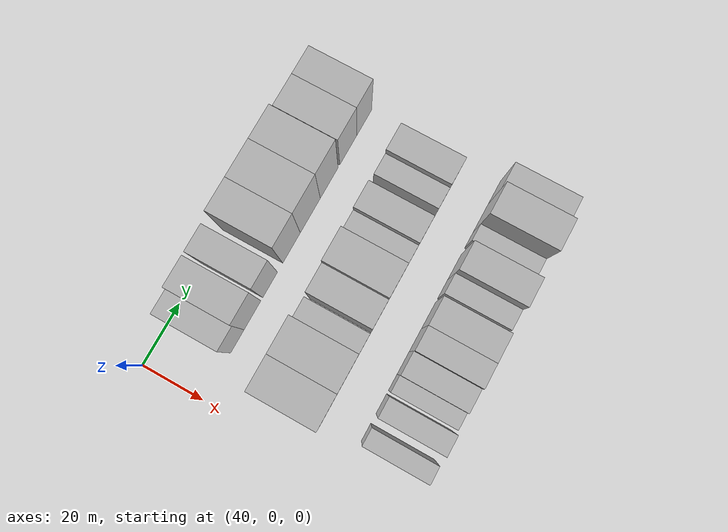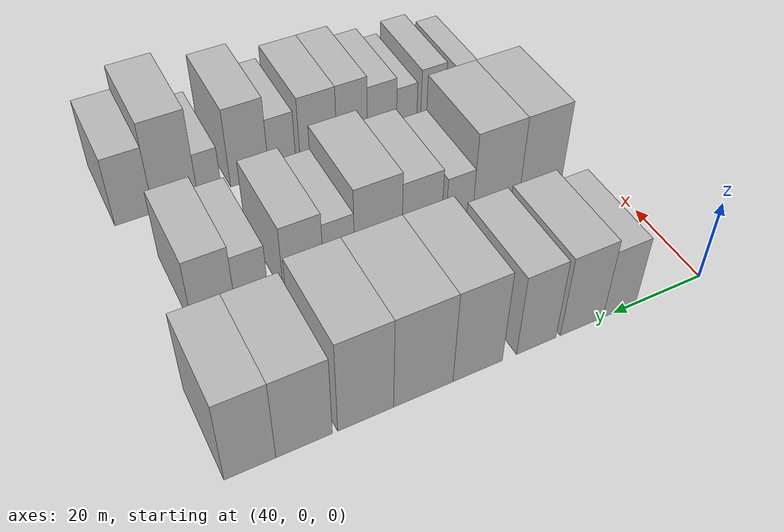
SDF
<sdf version="1.6">
 <world name="default">
  <model name="building_37">
   <static>1</static>
   <pose>50.0000 18.7815 0 0.000000 0.000000 0.000000</pose>
   <link name="link">
    <pose>0 0 9.00 0 0 0</pose>
    <collision name="collision"><geometry><box><size>20.0000 7.4841 18.0000</size></box></geometry></collision>
    <visual name="visual">
     <cast_shadows>0</cast_shadows>
     <geometry><box><size>20.0000 7.4841 18.0000</size></box></geometry>
     <material>
      <script>
       <uri>model://HANNAS_wall/materials/scripts</uri>
       <uri>model://HANNAS_wall/materials/textures</uri>
       <name>vrc/HANNAS_wall</name>
      </script>
     </material>
    </visual>
   </link>
  </model>
  <model name="building_38">
   <static>1</static>
   <pose>50.0000 27.2615 0 0.000000 0.000000 0.000000</pose>
   <link name="link">
    <pose>0 0 10.50 0 0 0</pose>
    <collision name="collision"><geometry><box><size>20.0000 9.4758 21.0000</size></box></geometry></collision>
    <visual name="visual">
     <cast_shadows>0</cast_shadows>
     <geometry><box><size>20.0000 9.4758 21.0000</size></box></geometry>
     <material>
      <script>
       <uri>model://HANNAS_wall/materials/scripts</uri>
       <uri>model://HANNAS_wall/materials/textures</uri>
       <name>vrc/HANNAS_wall</name>
      </script>
     </material>
    </visual>
   </link>
  </model>
  <model name="building_39">
   <static>1</static>
   <pose>50.0000 37.2371 0 0.000000 0.000000 0.000000</pose>
   <link name="link">
    <pose>0 0 10.50 0 0 0</pose>
    <collision name="collision"><geometry><box><size>20.0000 8.4755 21.0000</size></box></geometry></collision>
    <visual name="visual">
     <cast_shadows>0</cast_shadows>
     <geometry><box><size>20.0000 8.4755 21.0000</size></box></geometry>
     <material>
      <script>
       <uri>model://HANNAS_wall/materials/scripts</uri>
       <uri>model://HANNAS_wall/materials/textures</uri>
       <name>vrc/HANNAS_wall</name>
      </script>
     </material>
    </visual>
   </link>
  </model>
  <model name="building_40">
   <static>1</static>
   <pose>50.0000 49.5803 0 0.000000 0.000000 0.000000</pose>
   <link name="link">
    <pose>0 0 12.00 0 0 0</pose>
    <collision name="collision"><geometry><box><size>20.0000 10.2108 24.0000</size></box></geometry></collision>
    <visual name="visual">
     <cast_shadows>0</cast_shadows>
     <geometry><box><size>20.0000 10.2108 24.0000</size></box></geometry>
     <material>
      <script>
       <uri>model://HANNAS_wall/materials/scripts</uri>
       <uri>model://HANNAS_wall/materials/textures</uri>
       <name>vrc/HANNAS_wall</name>
      </script>
     </material>
    </visual>
   </link>
  </model>
  <model name="building_41">
   <static>1</static>
   <pose>50.0000 60.5973 0 0.000000 0.000000 0.000000</pose>
   <link name="link">
    <pose>0 0 12.00 0 0 0</pose>
    <collision name="collision"><geometry><box><size>20.0000 11.8232 24.0000</size></box></geometry></collision>
    <visual name="visual">
     <cast_shadows>0</cast_shadows>
     <geometry><box><size>20.0000 11.8232 24.0000</size></box></geometry>
     <material>
      <script>
       <uri>model://HANNAS_wall/materials/scripts</uri>
       <uri>model://HANNAS_wall/materials/textures</uri>
       <name>vrc/HANNAS_wall</name>
      </script>
     </material>
    </visual>
   </link>
  </model>
  <model name="building_42">
   <static>1</static>
   <pose>50.0000 71.8486 0 0.000000 0.000000 0.000000</pose>
   <link name="link">
    <pose>0 0 12.00 0 0 0</pose>
    <collision name="collision"><geometry><box><size>20.0000 10.6795 24.0000</size></box></geometry></collision>
    <visual name="visual">
     <cast_shadows>0</cast_shadows>
     <geometry><box><size>20.0000 10.6795 24.0000</size></box></geometry>
     <material>
      <script>
       <uri>model://HANNAS_wall/materials/scripts</uri>
       <uri>model://HANNAS_wall/materials/textures</uri>
       <name>vrc/HANNAS_wall</name>
      </script>
     </material>
    </visual>
   </link>
  </model>
  <model name="building_43">
   <static>1</static>
   <pose>50.0000 83.3677 0 0.000000 0.000000 0.000000</pose>
   <link name="link">
    <pose>0 0 10.50 0 0 0</pose>
    <collision name="collision"><geometry><box><size>20.0000 10.3586 21.0000</size></box></geometry></collision>
    <visual name="visual">
     <cast_shadows>0</cast_shadows>
     <geometry><box><size>20.0000 10.3586 21.0000</size></box></geometry>
     <material>
      <script>
       <uri>model://HANNAS_wall/materials/scripts</uri>
       <uri>model://HANNAS_wall/materials/textures</uri>
       <name>vrc/HANNAS_wall</name>
      </script>
     </material>
    </visual>
   </link>
  </model>
  <model name="building_44">
   <static>1</static>
   <pose>50.0000 93.1518 0 0.000000 0.000000 0.000000</pose>
   <link name="link">
    <pose>0 0 10.50 0 0 0</pose>
    <collision name="collision"><geometry><box><size>20.0000 9.2096 21.0000</size></box></geometry></collision>
    <visual name="visual">
     <cast_shadows>0</cast_shadows>
     <geometry><box><size>20.0000 9.2096 21.0000</size></box></geometry>
     <material>
      <script>
       <uri>model://HANNAS_wall/materials/scripts</uri>
       <uri>model://HANNAS_wall/materials/textures</uri>
       <name>vrc/HANNAS_wall</name>
      </script>
     </material>
    </visual>
   </link>
  </model>
  <model name="building_112">
   <static>1</static>
   <pose>82.0000 15.8721 0 0.000000 0.000000 0.000000</pose>
   <link name="link">
    <pose>0 0 12.00 0 0 0</pose>
    <collision name="collision"><geometry><box><size>20.0000 10.3417 24.0000</size></box></geometry></collision>
    <visual name="visual">
     <cast_shadows>0</cast_shadows>
     <geometry><box><size>20.0000 10.3417 24.0000</size></box></geometry>
     <material>
      <script>
       <uri>model://HANNAS_wall/materials/scripts</uri>
       <uri>model://HANNAS_wall/materials/textures</uri>
       <name>vrc/HANNAS_wall</name>
      </script>
     </material>
    </visual>
   </link>
  </model>
  <model name="building_113">
   <static>1</static>
   <pose>82.0000 26.5463 0 0.000000 0.000000 0.000000</pose>
   <link name="link">
    <pose>0 0 12.00 0 0 0</pose>
    <collision name="collision"><geometry><box><size>20.0000 11.0065 24.0000</size></box></geometry></collision>
    <visual name="visual">
     <cast_shadows>0</cast_shadows>
     <geometry><box><size>20.0000 11.0065 24.0000</size></box></geometry>
     <material>
      <script>
       <uri>model://HANNAS_wall/materials/scripts</uri>
       <uri>model://HANNAS_wall/materials/textures</uri>
       <name>vrc/HANNAS_wall</name>
      </script>
     </material>
    </visual>
   </link>
  </model>
  <model name="building_114">
   <static>1</static>
   <pose>82.0000 35.1488 0 0.000000 0.000000 0.000000</pose>
   <link name="link">
    <pose>0 0 7.50 0 0 0</pose>
    <collision name="collision"><geometry><box><size>20.0000 6.1986 15.0000</size></box></geometry></collision>
    <visual name="visual">
     <cast_shadows>0</cast_shadows>
     <geometry><box><size>20.0000 6.1986 15.0000</size></box></geometry>
     <material>
      <script>
       <uri>model://HANNAS_wall/materials/scripts</uri>
       <uri>model://HANNAS_wall/materials/textures</uri>
       <name>vrc/HANNAS_wall</name>
      </script>
     </material>
    </visual>
   </link>
  </model>
  <model name="building_115">
   <static>1</static>
   <pose>82.0000 43.6789 0 0.000000 0.000000 0.000000</pose>
   <link name="link">
    <pose>0 0 9.00 0 0 0</pose>
    <collision name="collision"><geometry><box><size>20.0000 8.8616 18.0000</size></box></geometry></collision>
    <visual name="visual">
     <cast_shadows>0</cast_shadows>
     <geometry><box><size>20.0000 8.8616 18.0000</size></box></geometry>
     <material>
      <script>
       <uri>model://HANNAS_wall/materials/scripts</uri>
       <uri>model://HANNAS_wall/materials/textures</uri>
       <name>vrc/HANNAS_wall</name>
      </script>
     </material>
    </visual>
   </link>
  </model>
  <model name="building_116">
   <static>1</static>
   <pose>82.0000 53.2702 0 0.000000 0.000000 0.000000</pose>
   <link name="link">
    <pose>0 0 10.50 0 0 0</pose>
    <collision name="collision"><geometry><box><size>20.0000 10.3209 21.0000</size></box></geometry></collision>
    <visual name="visual">
     <cast_shadows>0</cast_shadows>
     <geometry><box><size>20.0000 10.3209 21.0000</size></box></geometry>
     <material>
      <script>
       <uri>model://HANNAS_wall/materials/scripts</uri>
       <uri>model://HANNAS_wall/materials/textures</uri>
       <name>vrc/HANNAS_wall</name>
      </script>
     </material>
    </visual>
   </link>
  </model>
  <model name="building_117">
   <static>1</static>
   <pose>82.0000 61.7337 0 0.000000 0.000000 0.000000</pose>
   <link name="link">
    <pose>0 0 7.50 0 0 0</pose>
    <collision name="collision"><geometry><box><size>20.0000 6.6061 15.0000</size></box></geometry></collision>
    <visual name="visual">
     <cast_shadows>0</cast_shadows>
     <geometry><box><size>20.0000 6.6061 15.0000</size></box></geometry>
     <material>
      <script>
       <uri>model://HANNAS_wall/materials/scripts</uri>
       <uri>model://HANNAS_wall/materials/textures</uri>
       <name>vrc/HANNAS_wall</name>
      </script>
     </material>
    </visual>
   </link>
  </model>
  <model name="building_118">
   <static>1</static>
   <pose>82.0000 69.2477 0 0.000000 0.000000 0.000000</pose>
   <link name="link">
    <pose>0 0 9.00 0 0 0</pose>
    <collision name="collision"><geometry><box><size>20.0000 8.4220 18.0000</size></box></geometry></collision>
    <visual name="visual">
     <cast_shadows>0</cast_shadows>
     <geometry><box><size>20.0000 8.4220 18.0000</size></box></geometry>
     <material>
      <script>
       <uri>model://HANNAS_wall/materials/scripts</uri>
       <uri>model://HANNAS_wall/materials/textures</uri>
       <name>vrc/HANNAS_wall</name>
      </script>
     </material>
    </visual>
   </link>
  </model>
  <model name="building_119">
   <static>1</static>
   <pose>82.0000 79.7962 0 0.000000 0.000000 0.000000</pose>
   <link name="link">
    <pose>0 0 7.50 0 0 0</pose>
    <collision name="collision"><geometry><box><size>20.0000 6.6749 15.0000</size></box></geometry></collision>
    <visual name="visual">
     <cast_shadows>0</cast_shadows>
     <geometry><box><size>20.0000 6.6749 15.0000</size></box></geometry>
     <material>
      <script>
       <uri>model://HANNAS_wall/materials/scripts</uri>
       <uri>model://HANNAS_wall/materials/textures</uri>
       <name>vrc/HANNAS_wall</name>
      </script>
     </material>
    </visual>
   </link>
  </model>
  <model name="building_120">
   <static>1</static>
   <pose>82.0000 87.4304 0 0.000000 0.000000 0.000000</pose>
   <link name="link">
    <pose>0 0 9.00 0 0 0</pose>
    <collision name="collision"><geometry><box><size>20.0000 8.5935 18.0000</size></box></geometry></collision>
    <visual name="visual">
     <cast_shadows>0</cast_shadows>
     <geometry><box><size>20.0000 8.5935 18.0000</size></box></geometry>
     <material>
      <script>
       <uri>model://HANNAS_wall/materials/scripts</uri>
       <uri>model://HANNAS_wall/materials/textures</uri>
       <name>vrc/HANNAS_wall</name>
      </script>
     </material>
    </visual>
   </link>
  </model>
  <model name="building_191">
   <static>1</static>
   <pose>114.0000 14.6519 0 0.000000 0.000000 0.000000</pose>
   <link name="link">
    <pose>0 0 6.00 0 0 0</pose>
    <collision name="collision"><geometry><box><size>20.0000 5.3671 12.0000</size></box></geometry></collision>
    <visual name="visual">
     <cast_shadows>0</cast_shadows>
     <geometry><box><size>20.0000 5.3671 12.0000</size></box></geometry>
     <material>
      <script>
       <uri>model://HANNAS_wall/materials/scripts</uri>
       <uri>model://HANNAS_wall/materials/textures</uri>
       <name>vrc/HANNAS_wall</name>
      </script>
     </material>
    </visual>
   </link>
  </model>
  <model name="building_192">
   <static>1</static>
   <pose>114.0000 23.4452 0 0.000000 0.000000 0.000000</pose>
   <link name="link">
    <pose>0 0 7.50 0 0 0</pose>
    <collision name="collision"><geometry><box><size>20.0000 6.2194 15.0000</size></box></geometry></collision>
    <visual name="visual">
     <cast_shadows>0</cast_shadows>
     <geometry><box><size>20.0000 6.2194 15.0000</size></box></geometry>
     <material>
      <script>
       <uri>model://HANNAS_wall/materials/scripts</uri>
       <uri>model://HANNAS_wall/materials/textures</uri>
       <name>vrc/HANNAS_wall</name>
      </script>
     </material>
    </visual>
   </link>
  </model>
  <model name="building_193">
   <static>1</static>
   <pose>114.0000 30.0921 0 0.000000 0.000000 0.000000</pose>
   <link name="link">
    <pose>0 0 6.00 0 0 0</pose>
    <collision name="collision"><geometry><box><size>20.0000 5.0745 12.0000</size></box></geometry></collision>
    <visual name="visual">
     <cast_shadows>0</cast_shadows>
     <geometry><box><size>20.0000 5.0745 12.0000</size></box></geometry>
     <material>
      <script>
       <uri>model://HANNAS_wall/materials/scripts</uri>
       <uri>model://HANNAS_wall/materials/textures</uri>
       <name>vrc/HANNAS_wall</name>
      </script>
     </material>
    </visual>
   </link>
  </model>
  <model name="building_194">
   <static>1</static>
   <pose>114.0000 36.2184 0 0.000000 0.000000 0.000000</pose>
   <link name="link">
    <pose>0 0 7.50 0 0 0</pose>
    <collision name="collision"><geometry><box><size>20.0000 7.1781 15.0000</size></box></geometry></collision>
    <visual name="visual">
     <cast_shadows>0</cast_shadows>
     <geometry><box><size>20.0000 7.1781 15.0000</size></box></geometry>
     <material>
      <script>
       <uri>model://HANNAS_wall/materials/scripts</uri>
       <uri>model://HANNAS_wall/materials/textures</uri>
       <name>vrc/HANNAS_wall</name>
      </script>
     </material>
    </visual>
   </link>
  </model>
  <model name="building_195">
   <static>1</static>
   <pose>114.0000 43.5138 0 0.000000 0.000000 0.000000</pose>
   <link name="link">
    <pose>0 0 9.00 0 0 0</pose>
    <collision name="collision"><geometry><box><size>20.0000 7.4126 18.0000</size></box></geometry></collision>
    <visual name="visual">
     <cast_shadows>0</cast_shadows>
     <geometry><box><size>20.0000 7.4126 18.0000</size></box></geometry>
     <material>
      <script>
       <uri>model://HANNAS_wall/materials/scripts</uri>
       <uri>model://HANNAS_wall/materials/textures</uri>
       <name>vrc/HANNAS_wall</name>
      </script>
     </material>
    </visual>
   </link>
  </model>
  <model name="building_196">
   <static>1</static>
   <pose>114.0000 51.5668 0 0.000000 0.000000 0.000000</pose>
   <link name="link">
    <pose>0 0 9.00 0 0 0</pose>
    <collision name="collision"><geometry><box><size>20.0000 8.6933 18.0000</size></box></geometry></collision>
    <visual name="visual">
     <cast_shadows>0</cast_shadows>
     <geometry><box><size>20.0000 8.6933 18.0000</size></box></geometry>
     <material>
      <script>
       <uri>model://HANNAS_wall/materials/scripts</uri>
       <uri>model://HANNAS_wall/materials/textures</uri>
       <name>vrc/HANNAS_wall</name>
      </script>
     </material>
    </visual>
   </link>
  </model>
  <model name="building_197">
   <static>1</static>
   <pose>114.0000 60.0441 0 0.000000 0.000000 0.000000</pose>
   <link name="link">
    <pose>0 0 7.50 0 0 0</pose>
    <collision name="collision"><geometry><box><size>20.0000 6.2613 15.0000</size></box></geometry></collision>
    <visual name="visual">
     <cast_shadows>0</cast_shadows>
     <geometry><box><size>20.0000 6.2613 15.0000</size></box></geometry>
     <material>
      <script>
       <uri>model://HANNAS_wall/materials/scripts</uri>
       <uri>model://HANNAS_wall/materials/textures</uri>
       <name>vrc/HANNAS_wall</name>
      </script>
     </material>
    </visual>
   </link>
  </model>
  <model name="building_198">
   <static>1</static>
   <pose>114.0000 67.5379 0 0.000000 0.000000 0.000000</pose>
   <link name="link">
    <pose>0 0 10.50 0 0 0</pose>
    <collision name="collision"><geometry><box><size>20.0000 8.7264 21.0000</size></box></geometry></collision>
    <visual name="visual">
     <cast_shadows>0</cast_shadows>
     <geometry><box><size>20.0000 8.7264 21.0000</size></box></geometry>
     <material>
      <script>
       <uri>model://HANNAS_wall/materials/scripts</uri>
       <uri>model://HANNAS_wall/materials/textures</uri>
       <name>vrc/HANNAS_wall</name>
      </script>
     </material>
    </visual>
   </link>
  </model>
  <model name="building_199">
   <static>1</static>
   <pose>114.0000 76.5155 0 0.000000 0.000000 0.000000</pose>
   <link name="link">
    <pose>0 0 6.00 0 0 0</pose>
    <collision name="collision"><geometry><box><size>20.0000 5.2288 12.0000</size></box></geometry></collision>
    <visual name="visual">
     <cast_shadows>0</cast_shadows>
     <geometry><box><size>20.0000 5.2288 12.0000</size></box></geometry>
     <material>
      <script>
       <uri>model://HANNAS_wall/materials/scripts</uri>
       <uri>model://HANNAS_wall/materials/textures</uri>
       <name>vrc/HANNAS_wall</name>
      </script>
     </material>
    </visual>
   </link>
  </model>
  <model name="building_200">
   <static>1</static>
   <pose>114.0000 83.9352 0 0.000000 0.000000 0.000000</pose>
   <link name="link">
    <pose>0 0 12.00 0 0 0</pose>
    <collision name="collision"><geometry><box><size>20.0000 9.6106 24.0000</size></box></geometry></collision>
    <visual name="visual">
     <cast_shadows>0</cast_shadows>
     <geometry><box><size>20.0000 9.6106 24.0000</size></box></geometry>
     <material>
      <script>
       <uri>model://HANNAS_wall/materials/scripts</uri>
       <uri>model://HANNAS_wall/materials/textures</uri>
       <name>vrc/HANNAS_wall</name>
      </script>
     </material>
    </visual>
   </link>
  </model>
  <model name="building_201">
   <static>1</static>
   <pose>114.0000 92.8392 0 0.000000 0.000000 0.000000</pose>
   <link name="link">
    <pose>0 0 9.00 0 0 0</pose>
    <collision name="collision"><geometry><box><size>20.0000 8.1973 18.0000</size></box></geometry></collision>
    <visual name="visual">
     <cast_shadows>0</cast_shadows>
     <geometry><box><size>20.0000 8.1973 18.0000</size></box></geometry>
     <material>
      <script>
       <uri>model://HANNAS_wall/materials/scripts</uri>
       <uri>model://HANNAS_wall/materials/textures</uri>
       <name>vrc/HANNAS_wall</name>
      </script>
     </material>
    </visual>
   </link>
  </model>
 </world>
</sdf>
